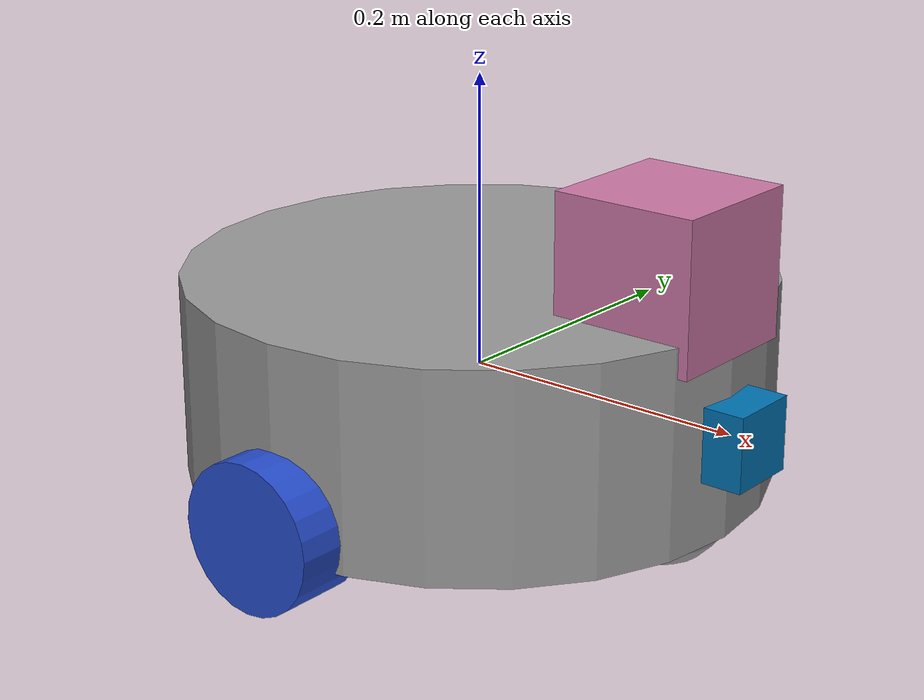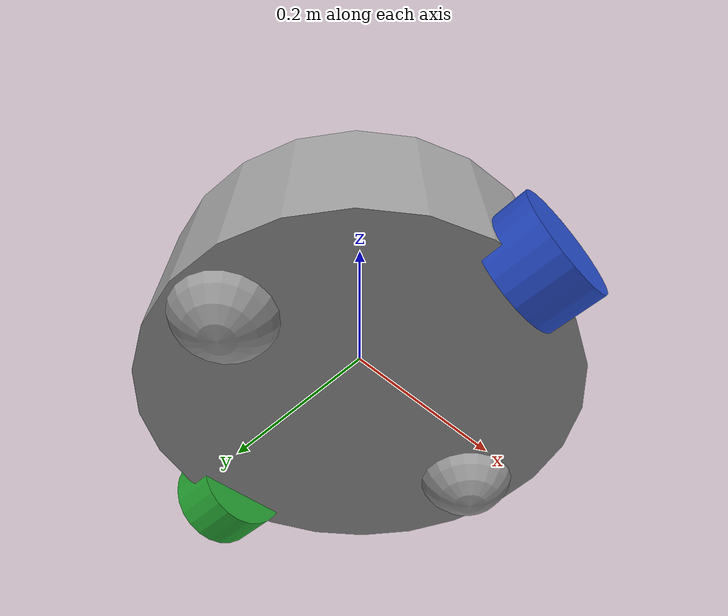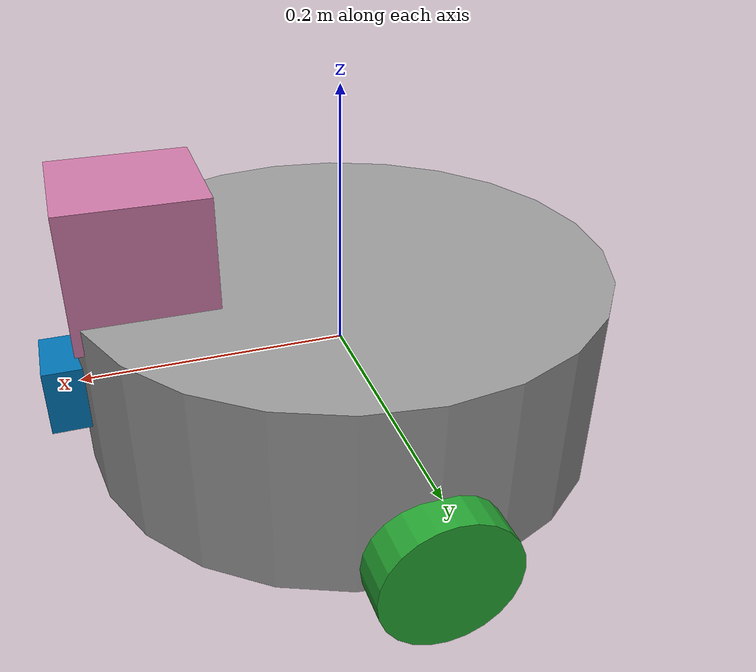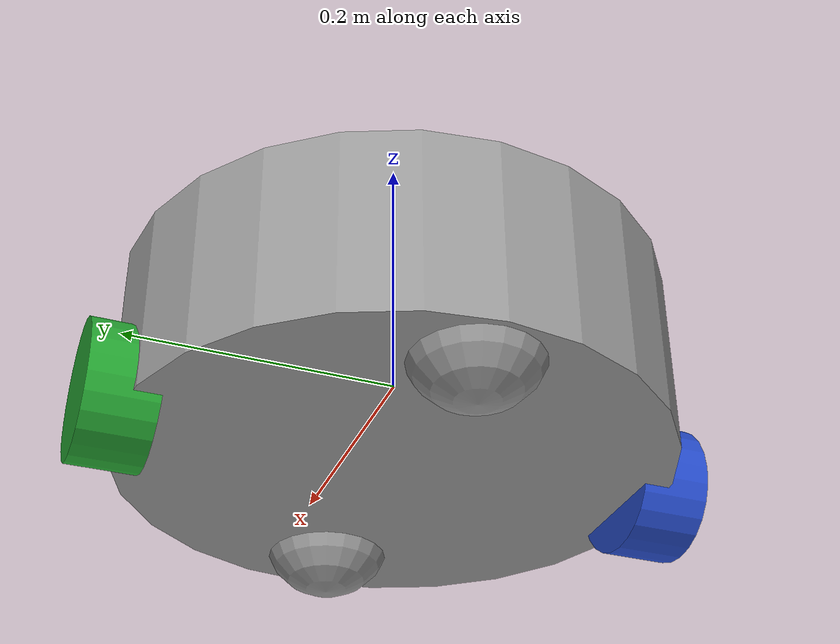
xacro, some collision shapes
<?xml version='1.0'?>

<robot name="my_robot" xmlns:xacro="http://www.ros.org/wiki/xacro">

  <xacro:include filename="$(find my_robot)/urdf/my_robot.gazebo" />

  <link name="robot_footprint"></link>

  <joint name="robot_footprint_joint" type="fixed">
    <origin xyz="0 0 0" rpy="0 0 0" />
    <parent link="robot_footprint"/>
    <child link="chassis" />
  </joint>

  <link name='chassis'>
    <pose>0 0 0.1 0 0 0</pose>

    <inertial>
      <mass value="15.0"/>
      <origin xyz="0.0 0 0" rpy=" 0 0 0"/>
      <inertia
          ixx="0.1" ixy="0" ixz="0"
          iyy="0.1" iyz="0"
          izz="0.1"
      />
    </inertial>
    <collision name='collision'>
      <origin xyz="0 0 0" rpy=" 0 0 0"/>
      <geometry>
        <cylinder radius="0.2" length="0.14"/>
      </geometry>
    </collision>
    <visual name='chassis_visual'>
      <origin xyz="0 0 0" rpy=" 0 0 0"/>
      <geometry>
        <cylinder radius="0.2" length="0.14"/>
      </geometry>
    </visual>
    <collision name='back_caster_collision'>
      <origin xyz="-0.15 0 -0.05" rpy=" 0 0 0"/>
      <geometry>
        <sphere radius="0.0499"/>
      </geometry>
    </collision>
    <visual name='back_caster_visual'>
      <origin xyz="-0.15 0 -0.05" rpy=" 0 0 0"/>
      <geometry>
        <sphere radius="0.05"/>
      </geometry>
    </visual>
    <collision name='front_caster_collision'>
      <origin xyz="0.15 0 -0.05" rpy=" 0 0 0"/>
      <geometry>
        <sphere radius="0.0499"/>
      </geometry>
    </collision>

    <visual name='front_caster_visual'>
      <origin xyz="0.15 0 -0.05" rpy=" 0 0 0"/>
      <geometry>
        <sphere radius="0.05"/>
      </geometry>
    </visual>
  </link>

  <joint type="continuous" name="left_wheel_hinge">
    <origin xyz="0 0.2 -0.05" rpy="0 0 0"/>
    <child link="left_wheel"/>
    <parent link="chassis"/>
    <axis xyz="0 1 0" rpy="0 0 0"/>
    <limit effort="10000" velocity="1000"/>
    <dynamics damping="1.0" friction="1.0"/>
  </joint>

  <link name='left_wheel'>
    <inertial>
      <mass value="5.0"/>
      <origin xyz="0.0 0 0" rpy=" 0 1.5707 1.5707"/>
      <inertia
          ixx="0.1" ixy="0" ixz="0"
          iyy="0.1" iyz="0"
          izz="0.1"
      />
    </inertial>
    <collision name='left_wheel_collision'>
      <origin xyz="0.0 0 0" rpy=" 0 1.5707 1.5707"/>
      <geometry>
        <cylinder radius="0.05" length="0.05"/>
      </geometry>
    </collision>
    <visual name='left_wheel_visual'>
      <origin xyz="0.0 0 0" rpy=" 0 1.5707 1.5707"/>
      <geometry>
        <cylinder radius="0.05" length="0.05"/>
      </geometry>
     <material name="Green"/>
    </visual>
  </link>

  <joint type="continuous" name="right_wheel_hinge">
    <origin xyz="0 -0.2 -0.05" rpy="0 0 0"/>
    <child link="right_wheel"/>
    <parent link="chassis"/>
    <axis xyz="0 1 0" rpy="0 0 0"/>
    <limit effort="10000" velocity="1000"/>
    <dynamics damping="1.0" friction="1.0"/>
  </joint>

  <link name='right_wheel'>
    <inertial>
      <mass value="5.0"/>
      <origin xyz="0.0 0 0" rpy=" 0 1.5707 1.5707"/>
      <inertia
          ixx="0.1" ixy="0" ixz="0"
          iyy="0.1" iyz="0"
          izz="0.1"
      />
    </inertial>
    <collision name='right_wheel_collision'>
      <origin xyz="0.0 0 0" rpy=" 0 1.5707 1.5707"/>
      <geometry>
        <cylinder radius="0.05" length="0.05"/>
      </geometry>
    </collision>
    <visual name='right_wheel_visual'>
      <origin xyz="0.0 0 0" rpy=" 0 1.5707 1.5707"/>
      <geometry>
        <cylinder radius="0.05" length="0.05"/>
      </geometry>
    </visual>
  </link>

  <joint type="fixed" name="camera_joint">
    <origin xyz="0.2 0 0" rpy="0 0 0"/>
    <child link="camera_link"/>
    <parent link="chassis"/>
    <axis xyz="0 1 0" rpy="0 0 0"/>
  </joint>

  <link name="camera_link">
    <origin xyz="0 0 0" rpy=" 0 0 0"/>
    <inertial>
      <mass value="0.1"/>
      <origin xyz="0.05 0.05 0.05" rpy=" 0 0 0"/>
      <inertia
          ixx="1e-6" ixy="0" ixz="0"
          iyy="1e-6" iyz="0"
          izz="1e-6"
      />
    </inertial>
    <collision name='camera_collision'>
      <origin xyz="0.0 0 0" rpy=" 0 0 0"/>
      <geometry>
        <box size="0.05 0.05 0.05"/>
      </geometry>
    </collision>
    <visual name='camera_visual'>
      <origin xyz="0.0 0 0" rpy=" 0 0 0"/>
      <geometry>
        <box size="0.05 0.05 0.05"/>
      </geometry>
    </visual>
  </link>

  <joint name="camera_optical_joint" type="fixed">
    <origin xyz="0 0 0" rpy="-1.5707 0 -1.5707"/>
    <parent link="camera_link"/>
    <child link="camera_link_optical"/>
  </joint>

  <link name="camera_link_optical">
  </link>

  <joint type="fixed" name="hokuyo_joint">
    <origin xyz="0.15 0 .1" rpy="0 0 0"/>
    <child link="hokuyo"/>
    <parent link="chassis"/>
    <axis xyz="0 1 0" rpy="0 0 0"/>
  </joint>

  <link name="hokuyo">
    <origin xyz="0 0 0" rpy=" 0 0 0"/>
    <inertial>
      <mass value="1e-5"/>
      <inertia
          ixx="1e-6" ixy="0" ixz="0"
          iyy="1e-6" iyz="0"
          izz="1e-6"
      />
    </inertial>
    <collision name='hokuyo_collision'>
      <origin xyz="0.0 0 0" rpy=" 0 0 0"/>
      <geometry>
        <box size="0.1 0.1 0.1"/>
      </geometry>
    </collision>
    <visual name='hokuyo_visual'>
      <origin xyz="0.0 0 0" rpy=" 0 0 0"/>
      <geometry>
	<mesh filename="package://my_robot/meshes/hokuyo.dae"/>
      </geometry>
    </visual>
  </link>

  <gazebo reference="left_wheel">
    <material>Gazebo/Blue</material>
  </gazebo>

  <gazebo reference="right_wheel">
    <material>Gazebo/Blue</material>
  </gazebo>

  <gazebo reference="chassis">
    <material>Gazebo/Gray</material>
  </gazebo>

  <gazebo reference="camera">
    <material>Gazebo/Black</material>
  </gazebo>

</robot>
